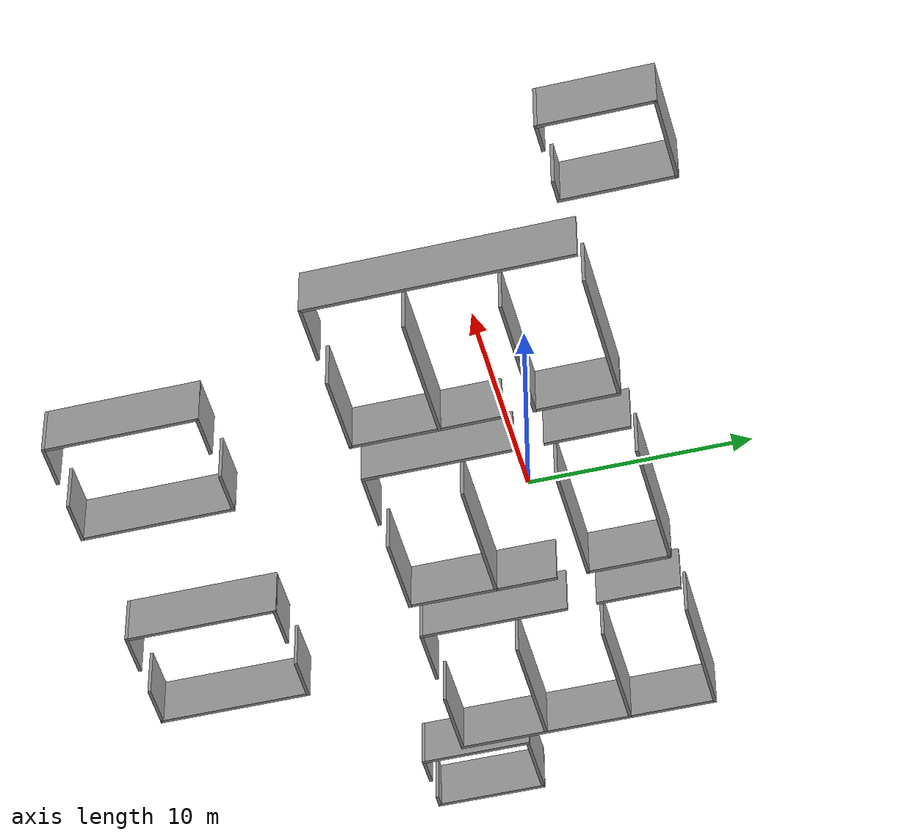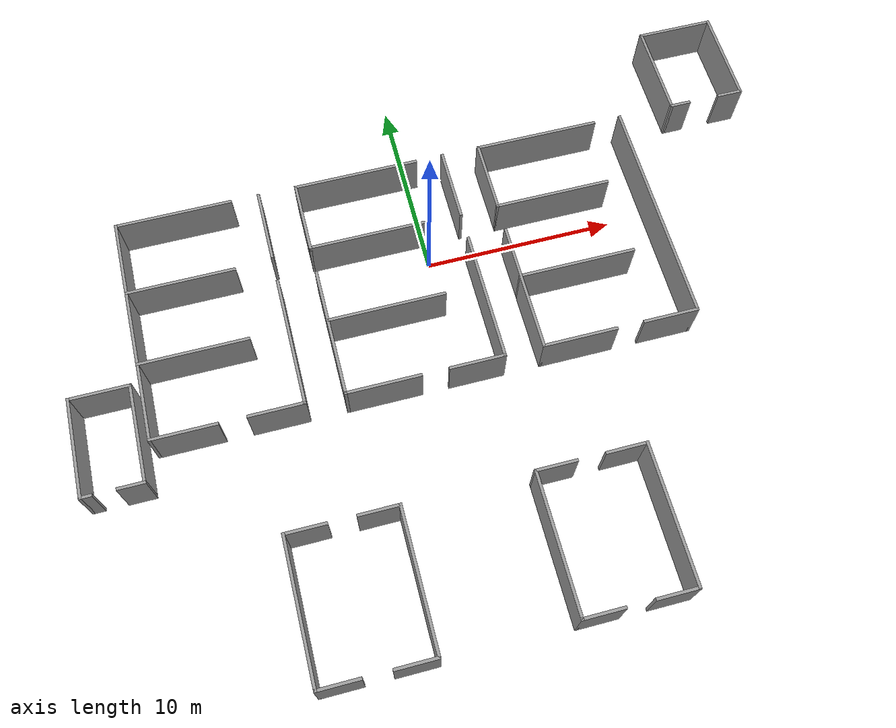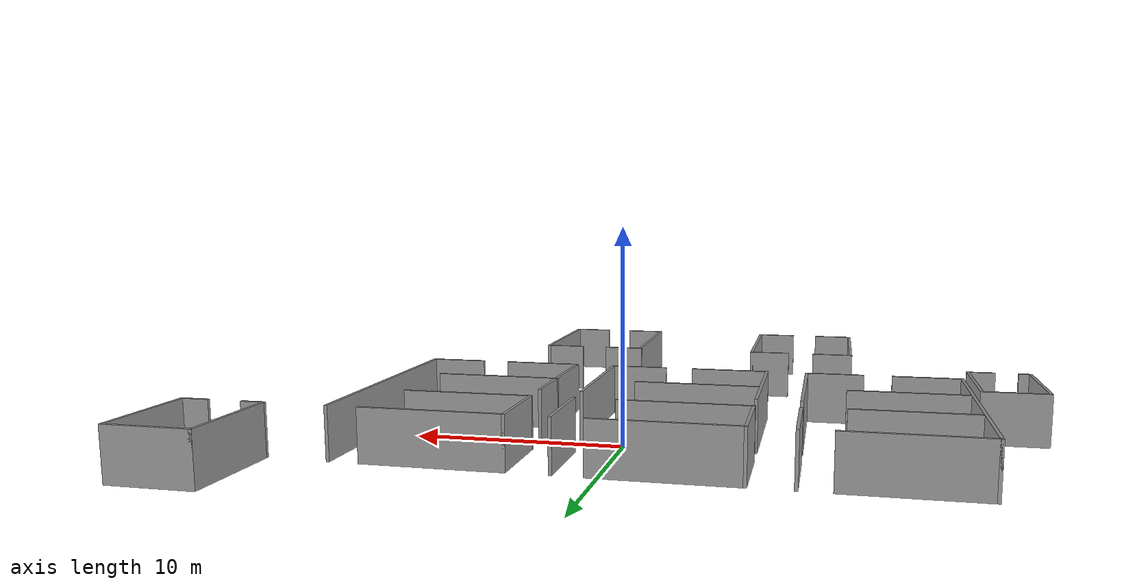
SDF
<?xml version='1.0'?>
<sdf version='1.6'>
  <model name='tents_big'>
    <pose frame=''>0 -5 0 0 -0 0</pose>
    <link name='Wall_10'>
      <collision name='Wall_10_Collision'>
        <geometry>
          <box>
            <size>3.15 0.15 2.5</size>
          </box>
        </geometry>
        <pose frame=''>0 0 1.25 0 -0 0</pose>
      </collision>
      <visual name='Wall_10_Visual'>
        <pose frame=''>0 0 1.25 0 -0 0</pose>
        <geometry>
          <box>
            <size>3.15 0.15 2.5</size>
          </box>
        </geometry>
        <material>
          <script>
            <uri>file://media/materials/scripts/gazebo.material</uri>
            <name>Gazebo/Grey</name>
          </script>
          <ambient>1 1 1 1</ambient>
        </material>
        <meta>
          <layer>0</layer>
        </meta>
      </visual>
      <pose frame=''>-17.5 1 0 0 -0 0</pose>
    </link>
    <link name='Wall_11'>
      <collision name='Wall_11_Collision'>
        <geometry>
          <box>
            <size>5.15 0.15 2.5</size>
          </box>
        </geometry>
        <pose frame=''>0 0 1.25 0 -0 0</pose>
      </collision>
      <visual name='Wall_11_Visual'>
        <pose frame=''>0 0 1.25 0 -0 0</pose>
        <geometry>
          <box>
            <size>5.15 0.15 2.5</size>
          </box>
        </geometry>
        <material>
          <script>
            <uri>file://media/materials/scripts/gazebo.material</uri>
            <name>Gazebo/Grey</name>
          </script>
          <ambient>1 1 1 1</ambient>
        </material>
        <meta>
          <layer>0</layer>
        </meta>
      </visual>
      <pose frame=''>-16 -1.5 0 0 -0 -1.5708</pose>
    </link>
    <link name='Wall_12'>
      <collision name='Wall_12_Collision'>
        <geometry>
          <box>
            <size>1.4 0.15 2.5</size>
          </box>
        </geometry>
        <pose frame=''>0 0 1.25 0 -0 0</pose>
      </collision>
      <visual name='Wall_12_Visual'>
        <pose frame=''>0 0 1.25 0 -0 0</pose>
        <geometry>
          <box>
            <size>1.4 0.15 2.5</size>
          </box>
        </geometry>
        <material>
          <script>
            <uri>file://media/materials/scripts/gazebo.material</uri>
            <name>Gazebo/Grey</name>
          </script>
          <ambient>1 1 1 1</ambient>
        </material>
        <meta>
          <layer>0</layer>
        </meta>
      </visual>
      <pose frame=''>-16.625 -4 0 0 -0 3.14159</pose>
    </link>
    <link name='Wall_14'>
      <collision name='Wall_14_Collision'>
        <geometry>
          <box>
            <size>3.4 0.15 2.5</size>
          </box>
        </geometry>
        <pose frame=''>0 0 1.25 0 -0 0</pose>
      </collision>
      <visual name='Wall_14_Visual'>
        <pose frame=''>0 0 1.25 0 -0 0</pose>
        <geometry>
          <box>
            <size>3.4 0.15 2.5</size>
          </box>
        </geometry>
        <material>
          <script>
            <uri>file://media/materials/scripts/gazebo.material</uri>
            <name>Gazebo/Grey</name>
          </script>
          <ambient>1 1 1 1</ambient>
        </material>
        <meta>
          <layer>0</layer>
        </meta>
      </visual>
      <pose frame=''>-13.875 -2 0 0 -0 3.14159</pose>
    </link>
    <link name='Wall_15'>
      <collision name='Wall_15_Collision'>
        <geometry>
          <box>
            <size>12.15 0.15 2.5</size>
          </box>
        </geometry>
        <pose frame=''>0 0 1.25 0 -0 0</pose>
      </collision>
      <visual name='Wall_15_Visual'>
        <pose frame=''>0 0 1.25 0 -0 0</pose>
        <geometry>
          <box>
            <size>12.15 0.15 2.5</size>
          </box>
        </geometry>
        <material>
          <script>
            <uri>file://media/materials/scripts/gazebo.material</uri>
            <name>Gazebo/Grey</name>
          </script>
          <ambient>1 1 1 1</ambient>
        </material>
        <meta>
          <layer>0</layer>
        </meta>
      </visual>
      <pose frame=''>-15.5 4 0 0 -0 1.5708</pose>
    </link>
    <link name='Wall_16'>
      <collision name='Wall_16_Collision'>
        <geometry>
          <box>
            <size>6.15 0.15 2.5</size>
          </box>
        </geometry>
        <pose frame=''>0 0 1.25 0 -0 0</pose>
      </collision>
      <visual name='Wall_16_Visual'>
        <pose frame=''>0 0 1.25 0 -0 0</pose>
        <geometry>
          <box>
            <size>6.15 0.15 2.5</size>
          </box>
        </geometry>
        <material>
          <script>
            <uri>file://media/materials/scripts/gazebo.material</uri>
            <name>Gazebo/Grey</name>
          </script>
          <ambient>1 1 1 1</ambient>
        </material>
        <meta>
          <layer>0</layer>
        </meta>
      </visual>
      <pose frame=''>-12.5 10 0 0 -0 0</pose>
    </link>
    <link name='Wall_18'>
      <collision name='Wall_18_Collision'>
        <geometry>
          <box>
            <size>3.9 0.15 2.5</size>
          </box>
        </geometry>
        <pose frame=''>0 0 1.25 0 -0 0</pose>
      </collision>
      <visual name='Wall_18_Visual'>
        <pose frame=''>0 0 1.25 0 -0 0</pose>
        <geometry>
          <box>
            <size>3.9 0.15 2.5</size>
          </box>
        </geometry>
        <material>
          <script>
            <uri>file://media/materials/scripts/gazebo.material</uri>
            <name>Gazebo/Grey</name>
          </script>
          <ambient>1 1 1 1</ambient>
        </material>
        <meta>
          <layer>0</layer>
        </meta>
      </visual>
      <pose frame=''>-8 8.125 0 0 -0 -1.5708</pose>
    </link>
    <link name='Wall_20'>
      <collision name='Wall_20_Collision'>
        <geometry>
          <box>
            <size>6.9 0.15 2.5</size>
          </box>
        </geometry>
        <pose frame=''>0 0 1.25 0 -0 0</pose>
      </collision>
      <visual name='Wall_20_Visual'>
        <pose frame=''>0 0 1.25 0 -0 0</pose>
        <geometry>
          <box>
            <size>6.9 0.15 2.5</size>
          </box>
        </geometry>
        <material>
          <script>
            <uri>file://media/materials/scripts/gazebo.material</uri>
            <name>Gazebo/Grey</name>
          </script>
          <ambient>1 1 1 1</ambient>
        </material>
        <meta>
          <layer>0</layer>
        </meta>
      </visual>
      <pose frame=''>-8 1.375 0 0 -0 -1.5708</pose>
    </link>
    <link name='Wall_21'>
      <collision name='Wall_21_Collision'>
        <geometry>
          <box>
            <size>2.9 0.15 2.5</size>
          </box>
        </geometry>
        <pose frame=''>0 0 1.25 0 -0 0</pose>
      </collision>
      <visual name='Wall_21_Visual'>
        <pose frame=''>0 0 1.25 0 -0 0</pose>
        <geometry>
          <box>
            <size>2.9 0.15 2.5</size>
          </box>
        </geometry>
        <material>
          <script>
            <uri>file://media/materials/scripts/gazebo.material</uri>
            <name>Gazebo/Grey</name>
          </script>
          <ambient>1 1 1 1</ambient>
        </material>
        <meta>
          <layer>0</layer>
        </meta>
      </visual>
      <pose frame=''>-9.375 -2 0 0 -0 3.14159</pose>
    </link>
    <link name='Wall_23'>
      <collision name='Wall_23_Collision'>
        <geometry>
          <box>
            <size>5.65 0.15 2.5</size>
          </box>
        </geometry>
        <pose frame=''>0 0 1.25 0 -0 0</pose>
      </collision>
      <visual name='Wall_23_Visual'>
        <pose frame=''>0 0 1.25 0 -0 0</pose>
        <geometry>
          <box>
            <size>5.65 0.15 2.5</size>
          </box>
        </geometry>
        <material>
          <script>
            <uri>file://media/materials/scripts/gazebo.material</uri>
            <name>Gazebo/Grey</name>
          </script>
          <ambient>1 1 1 1</ambient>
        </material>
        <meta>
          <layer>0</layer>
        </meta>
      </visual>
      <pose frame=''>-12.75 6 0 0 -0 0</pose>
    </link>
    <link name='Wall_26'>
      <collision name='Wall_26_Collision'>
        <geometry>
          <box>
            <size>5.65 0.15 2.5</size>
          </box>
        </geometry>
        <pose frame=''>0 0 1.25 0 -0 0</pose>
      </collision>
      <visual name='Wall_26_Visual'>
        <pose frame=''>0 0 1.25 0 -0 0</pose>
        <geometry>
          <box>
            <size>5.65 0.15 2.5</size>
          </box>
        </geometry>
        <material>
          <script>
            <uri>file://media/materials/scripts/gazebo.material</uri>
            <name>Gazebo/Grey</name>
          </script>
          <ambient>1 1 1 1</ambient>
        </material>
        <meta>
          <layer>0</layer>
        </meta>
      </visual>
      <pose frame=''>-12.75 2 0 0 -0 0</pose>
    </link>
    <link name='Wall_28'>
      <collision name='Wall_28_Collision'>
        <geometry>
          <box>
            <size>3.9 0.15 2.5</size>
          </box>
        </geometry>
        <pose frame=''>0 0 1.25 0 -0 0</pose>
      </collision>
      <visual name='Wall_28_Visual'>
        <pose frame=''>0 0 1.25 0 -0 0</pose>
        <geometry>
          <box>
            <size>3.9 0.15 2.5</size>
          </box>
        </geometry>
        <material>
          <script>
            <uri>file://media/materials/scripts/gazebo.material</uri>
            <name>Gazebo/Grey</name>
          </script>
          <ambient>1 1 1 1</ambient>
        </material>
        <meta>
          <layer>0</layer>
        </meta>
      </visual>
      <pose frame=''>-4.125 -2 0 0 -0 3.14159</pose>
    </link>
    <link name='Wall_29'>
      <collision name='Wall_29_Collision'>
        <geometry>
          <box>
            <size>6.9 0.15 2.5</size>
          </box>
        </geometry>
        <pose frame=''>0 0 1.25 0 -0 0</pose>
      </collision>
      <visual name='Wall_29_Visual'>
        <pose frame=''>0 0 1.25 0 -0 0</pose>
        <geometry>
          <box>
            <size>6.9 0.15 2.5</size>
          </box>
        </geometry>
        <material>
          <script>
            <uri>file://media/materials/scripts/gazebo.material</uri>
            <name>Gazebo/Grey</name>
          </script>
          <ambient>1 1 1 1</ambient>
        </material>
        <meta>
          <layer>0</layer>
        </meta>
      </visual>
      <pose frame=''>-6 1.375 0 0 -0 1.5708</pose>
    </link>
    <link name='Wall_31'>
      <collision name='Wall_31_Collision'>
        <geometry>
          <box>
            <size>3.9 0.15 2.5</size>
          </box>
        </geometry>
        <pose frame=''>0 0 1.25 0 -0 0</pose>
      </collision>
      <visual name='Wall_31_Visual'>
        <pose frame=''>0 0 1.25 0 -0 0</pose>
        <geometry>
          <box>
            <size>3.9 0.15 2.5</size>
          </box>
        </geometry>
        <material>
          <script>
            <uri>file://media/materials/scripts/gazebo.material</uri>
            <name>Gazebo/Grey</name>
          </script>
          <ambient>1 1 1 1</ambient>
        </material>
        <meta>
          <layer>0</layer>
        </meta>
      </visual>
      <pose frame=''>-6 8.125 0 0 -0 1.5708</pose>
    </link>
    <link name='Wall_32'>
      <collision name='Wall_32_Collision'>
        <geometry>
          <box>
            <size>6.65 0.15 2.5</size>
          </box>
        </geometry>
        <pose frame=''>0 0 1.25 0 -0 0</pose>
      </collision>
      <visual name='Wall_32_Visual'>
        <pose frame=''>0 0 1.25 0 -0 0</pose>
        <geometry>
          <box>
            <size>6.65 0.15 2.5</size>
          </box>
        </geometry>
        <material>
          <script>
            <uri>file://media/materials/scripts/gazebo.material</uri>
            <name>Gazebo/Grey</name>
          </script>
          <ambient>1 1 1 1</ambient>
        </material>
        <meta>
          <layer>0</layer>
        </meta>
      </visual>
      <pose frame=''>-2.75 10 0 0 -0 0</pose>
    </link>
    <link name='Wall_35'>
      <collision name='Wall_35_Collision'>
        <geometry>
          <box>
            <size>2.9 0.15 2.5</size>
          </box>
        </geometry>
        <pose frame=''>0 0 1.25 0 -0 0</pose>
      </collision>
      <visual name='Wall_35_Visual'>
        <pose frame=''>0 0 1.25 0 -0 0</pose>
        <geometry>
          <box>
            <size>2.9 0.15 2.5</size>
          </box>
        </geometry>
        <material>
          <script>
            <uri>file://media/materials/scripts/gazebo.material</uri>
            <name>Gazebo/Grey</name>
          </script>
          <ambient>1 1 1 1</ambient>
        </material>
        <meta>
          <layer>0</layer>
        </meta>
      </visual>
      <pose frame=''>0.625 -2 0 0 -0 3.14159</pose>
    </link>
    <link name='Wall_37'>
      <collision name='Wall_37_Collision'>
        <geometry>
          <box>
            <size>6.15 0.15 2.5</size>
          </box>
        </geometry>
        <pose frame=''>0 0 1.25 0 -0 0</pose>
      </collision>
      <visual name='Wall_37_Visual'>
        <pose frame=''>0 0 1.25 0 -0 0</pose>
        <geometry>
          <box>
            <size>6.15 0.15 2.5</size>
          </box>
        </geometry>
        <material>
          <script>
            <uri>file://media/materials/scripts/gazebo.material</uri>
            <name>Gazebo/Grey</name>
          </script>
          <ambient>1 1 1 1</ambient>
        </material>
        <meta>
          <layer>0</layer>
        </meta>
      </visual>
      <pose frame=''>-3 6.25 0 0 -0 0</pose>
    </link>
    <link name='Wall_39'>
      <collision name='Wall_39_Collision'>
        <geometry>
          <box>
            <size>6.15 0.15 2.5</size>
          </box>
        </geometry>
        <pose frame=''>0 0 1.25 0 -0 0</pose>
      </collision>
      <visual name='Wall_39_Visual'>
        <pose frame=''>0 0 1.25 0 -0 0</pose>
        <geometry>
          <box>
            <size>6.15 0.15 2.5</size>
          </box>
        </geometry>
        <material>
          <script>
            <uri>file://media/materials/scripts/gazebo.material</uri>
            <name>Gazebo/Grey</name>
          </script>
          <ambient>1 1 1 1</ambient>
        </material>
        <meta>
          <layer>0</layer>
        </meta>
      </visual>
      <pose frame=''>-3 2 0 0 -0 0</pose>
    </link>
    <link name='Wall_41'>
      <collision name='Wall_41_Collision'>
        <geometry>
          <box>
            <size>6.9 0.15 2.5</size>
          </box>
        </geometry>
        <pose frame=''>0 0 1.25 0 -0 0</pose>
      </collision>
      <visual name='Wall_41_Visual'>
        <pose frame=''>0 0 1.25 0 -0 0</pose>
        <geometry>
          <box>
            <size>6.9 0.15 2.5</size>
          </box>
        </geometry>
        <material>
          <script>
            <uri>file://media/materials/scripts/gazebo.material</uri>
            <name>Gazebo/Grey</name>
          </script>
          <ambient>1 1 1 1</ambient>
        </material>
        <meta>
          <layer>0</layer>
        </meta>
      </visual>
      <pose frame=''>2 1.375 0 0 -0 1.5708</pose>
    </link>
    <link name='Wall_43'>
      <collision name='Wall_43_Collision'>
        <geometry>
          <box>
            <size>3.9 0.15 2.5</size>
          </box>
        </geometry>
        <pose frame=''>0 0 1.25 0 -0 0</pose>
      </collision>
      <visual name='Wall_43_Visual'>
        <pose frame=''>0 0 1.25 0 -0 0</pose>
        <geometry>
          <box>
            <size>3.9 0.15 2.5</size>
          </box>
        </geometry>
        <material>
          <script>
            <uri>file://media/materials/scripts/gazebo.material</uri>
            <name>Gazebo/Grey</name>
          </script>
          <ambient>1 1 1 1</ambient>
        </material>
        <meta>
          <layer>0</layer>
        </meta>
      </visual>
      <pose frame=''>2 8.125 0 0 -0 1.5708</pose>
    </link>
    <link name='Wall_45'>
      <collision name='Wall_45_Collision'>
        <geometry>
          <box>
            <size>3.9 0.15 2.5</size>
          </box>
        </geometry>
        <pose frame=''>0 0 1.25 0 -0 0</pose>
      </collision>
      <visual name='Wall_45_Visual'>
        <pose frame=''>0 0 1.25 0 -0 0</pose>
        <geometry>
          <box>
            <size>3.9 0.15 2.5</size>
          </box>
        </geometry>
        <material>
          <script>
            <uri>file://media/materials/scripts/gazebo.material</uri>
            <name>Gazebo/Grey</name>
          </script>
          <ambient>1 1 1 1</ambient>
        </material>
        <meta>
          <layer>0</layer>
        </meta>
      </visual>
      <pose frame=''>4 8.125 0 0 -0 1.5708</pose>
    </link>
    <link name='Wall_46'>
      <collision name='Wall_46_Collision'>
        <geometry>
          <box>
            <size>6.65 0.15 2.5</size>
          </box>
        </geometry>
        <pose frame=''>0 0 1.25 0 -0 0</pose>
      </collision>
      <visual name='Wall_46_Visual'>
        <pose frame=''>0 0 1.25 0 -0 0</pose>
        <geometry>
          <box>
            <size>6.65 0.15 2.5</size>
          </box>
        </geometry>
        <material>
          <script>
            <uri>file://media/materials/scripts/gazebo.material</uri>
            <name>Gazebo/Grey</name>
          </script>
          <ambient>1 1 1 1</ambient>
        </material>
        <meta>
          <layer>0</layer>
        </meta>
      </visual>
      <pose frame=''>7.25 10 0 0 -0 0</pose>
    </link>
    <link name='Wall_48'>
      <collision name='Wall_48_Collision'>
        <geometry>
          <box>
            <size>6.9 0.15 2.5</size>
          </box>
        </geometry>
        <pose frame=''>0 0 1.25 0 -0 0</pose>
      </collision>
      <visual name='Wall_48_Visual'>
        <pose frame=''>0 0 1.25 0 -0 0</pose>
        <geometry>
          <box>
            <size>6.9 0.15 2.5</size>
          </box>
        </geometry>
        <material>
          <script>
            <uri>file://media/materials/scripts/gazebo.material</uri>
            <name>Gazebo/Grey</name>
          </script>
          <ambient>1 1 1 1</ambient>
        </material>
        <meta>
          <layer>0</layer>
        </meta>
      </visual>
      <pose frame=''>4 1.375 0 0 -0 -1.5708</pose>
    </link>
    <link name='Wall_49'>
      <collision name='Wall_49_Collision'>
        <geometry>
          <box>
            <size>3.9 0.15 2.5</size>
          </box>
        </geometry>
        <pose frame=''>0 0 1.25 0 -0 0</pose>
      </collision>
      <visual name='Wall_49_Visual'>
        <pose frame=''>0 0 1.25 0 -0 0</pose>
        <geometry>
          <box>
            <size>3.9 0.15 2.5</size>
          </box>
        </geometry>
        <material>
          <script>
            <uri>file://media/materials/scripts/gazebo.material</uri>
            <name>Gazebo/Grey</name>
          </script>
          <ambient>1 1 1 1</ambient>
        </material>
        <meta>
          <layer>0</layer>
        </meta>
      </visual>
      <pose frame=''>5.875 -2 0 0 -0 0</pose>
    </link>
    <link name='Wall_51'>
      <collision name='Wall_51_Collision'>
        <geometry>
          <box>
            <size>2.9 0.15 2.5</size>
          </box>
        </geometry>
        <pose frame=''>0 0 1.25 0 -0 0</pose>
      </collision>
      <visual name='Wall_51_Visual'>
        <pose frame=''>0 0 1.25 0 -0 0</pose>
        <geometry>
          <box>
            <size>2.9 0.15 2.5</size>
          </box>
        </geometry>
        <material>
          <script>
            <uri>file://media/materials/scripts/gazebo.material</uri>
            <name>Gazebo/Grey</name>
          </script>
          <ambient>1 1 1 1</ambient>
        </material>
        <meta>
          <layer>0</layer>
        </meta>
      </visual>
      <pose frame=''>10.625 -2 0 0 -0 0</pose>
    </link>
    <link name='Wall_52'>
      <collision name='Wall_52_Collision'>
        <geometry>
          <box>
            <size>12.15 0.15 2.5</size>
          </box>
        </geometry>
        <pose frame=''>0 0 1.25 0 -0 0</pose>
      </collision>
      <visual name='Wall_52_Visual'>
        <pose frame=''>0 0 1.25 0 -0 0</pose>
        <geometry>
          <box>
            <size>12.15 0.15 2.5</size>
          </box>
        </geometry>
        <material>
          <script>
            <uri>file://media/materials/scripts/gazebo.material</uri>
            <name>Gazebo/Grey</name>
          </script>
          <ambient>1 1 1 1</ambient>
        </material>
        <meta>
          <layer>0</layer>
        </meta>
      </visual>
      <pose frame=''>12 4 0 0 -0 1.5708</pose>
    </link>
    <link name='Wall_54'>
      <collision name='Wall_54_Collision'>
        <geometry>
          <box>
            <size>6.15 0.15 2.5</size>
          </box>
        </geometry>
        <pose frame=''>0 0 1.25 0 -0 0</pose>
      </collision>
      <visual name='Wall_54_Visual'>
        <pose frame=''>0 0 1.25 0 -0 0</pose>
        <geometry>
          <box>
            <size>6.15 0.15 2.5</size>
          </box>
        </geometry>
        <material>
          <script>
            <uri>file://media/materials/scripts/gazebo.material</uri>
            <name>Gazebo/Grey</name>
          </script>
          <ambient>1 1 1 1</ambient>
        </material>
        <meta>
          <layer>0</layer>
        </meta>
      </visual>
      <pose frame=''>7 2 0 0 -0 0</pose>
    </link>
    <link name='Wall_56'>
      <collision name='Wall_56_Collision'>
        <geometry>
          <box>
            <size>6.15 0.15 2.5</size>
          </box>
        </geometry>
        <pose frame=''>0 0 1.25 0 -0 0</pose>
      </collision>
      <visual name='Wall_56_Visual'>
        <pose frame=''>0 0 1.25 0 -0 0</pose>
        <geometry>
          <box>
            <size>6.15 0.15 2.5</size>
          </box>
        </geometry>
        <material>
          <script>
            <uri>file://media/materials/scripts/gazebo.material</uri>
            <name>Gazebo/Grey</name>
          </script>
          <ambient>1 1 1 1</ambient>
        </material>
        <meta>
          <layer>0</layer>
        </meta>
      </visual>
      <pose frame=''>7 6.25 0 0 -0 0</pose>
    </link>
    <link name='Wall_60'>
      <collision name='Wall_60_Collision'>
        <geometry>
          <box>
            <size>1.15 0.15 2.5</size>
          </box>
        </geometry>
        <pose frame=''>0 0 1.25 0 -0 0</pose>
      </collision>
      <visual name='Wall_60_Visual'>
        <pose frame=''>0 0 1.25 0 -0 0</pose>
        <geometry>
          <box>
            <size>1.15 0.15 2.5</size>
          </box>
        </geometry>
        <material>
          <script>
            <uri>file://media/materials/scripts/gazebo.material</uri>
            <name>Gazebo/Grey</name>
          </script>
          <ambient>1 1 1 1</ambient>
        </material>
        <meta>
          <layer>0</layer>
        </meta>
      </visual>
      <pose frame=''>15.5 10 0 0 -0 3.14159</pose>
    </link>
    <link name='Wall_61'>
      <collision name='Wall_61_Collision'>
        <geometry>
          <box>
            <size>5.15 0.15 2.5</size>
          </box>
        </geometry>
        <pose frame=''>0 0 1.25 0 -0 0</pose>
      </collision>
      <visual name='Wall_61_Visual'>
        <pose frame=''>0 0 1.25 0 -0 0</pose>
        <geometry>
          <box>
            <size>5.15 0.15 2.5</size>
          </box>
        </geometry>
        <material>
          <script>
            <uri>file://media/materials/scripts/gazebo.material</uri>
            <name>Gazebo/Grey</name>
          </script>
          <ambient>1 1 1 1</ambient>
        </material>
        <meta>
          <layer>0</layer>
        </meta>
      </visual>
      <pose frame=''>15 12.5 0 0 -0 1.5708</pose>
    </link>
    <link name='Wall_62'>
      <collision name='Wall_62_Collision'>
        <geometry>
          <box>
            <size>4.15 0.15 2.5</size>
          </box>
        </geometry>
        <pose frame=''>0 0 1.25 0 -0 0</pose>
      </collision>
      <visual name='Wall_62_Visual'>
        <pose frame=''>0 0 1.25 0 -0 0</pose>
        <geometry>
          <box>
            <size>4.15 0.15 2.5</size>
          </box>
        </geometry>
        <material>
          <script>
            <uri>file://media/materials/scripts/gazebo.material</uri>
            <name>Gazebo/Grey</name>
          </script>
          <ambient>1 1 1 1</ambient>
        </material>
        <meta>
          <layer>0</layer>
        </meta>
      </visual>
      <pose frame=''>17 15 0 0 -0 0</pose>
    </link>
    <link name='Wall_63'>
      <collision name='Wall_63_Collision'>
        <geometry>
          <box>
            <size>5.14984 0.15 2.5</size>
          </box>
        </geometry>
        <pose frame=''>0 0 1.25 0 -0 0</pose>
      </collision>
      <visual name='Wall_63_Visual'>
        <pose frame=''>0 0 1.25 0 -0 0</pose>
        <geometry>
          <box>
            <size>5.14984 0.15 2.5</size>
          </box>
        </geometry>
        <material>
          <script>
            <uri>file://media/materials/scripts/gazebo.material</uri>
            <name>Gazebo/Grey</name>
          </script>
          <ambient>1 1 1 1</ambient>
        </material>
        <meta>
          <layer>0</layer>
        </meta>
      </visual>
      <pose frame=''>19 12.5 0 0 -0 -1.5708</pose>
    </link>
    <link name='Wall_64'>
      <collision name='Wall_64_Collision'>
        <geometry>
          <box>
            <size>1.4 0.15 2.5</size>
          </box>
        </geometry>
        <pose frame=''>0 0 1.25 0 -0 0</pose>
      </collision>
      <visual name='Wall_64_Visual'>
        <pose frame=''>0 0 1.25 0 -0 0</pose>
        <geometry>
          <box>
            <size>1.4 0.15 2.5</size>
          </box>
        </geometry>
        <material>
          <script>
            <uri>file://media/materials/scripts/gazebo.material</uri>
            <name>Gazebo/Grey</name>
          </script>
          <ambient>1 1 1 1</ambient>
        </material>
        <meta>
          <layer>0</layer>
        </meta>
      </visual>
      <pose frame=''>18.375 10 0 0 -0 3.14159</pose>
    </link>
    <link name='Wall_69'>
      <collision name='Wall_69_Collision'>
        <geometry>
          <box>
            <size>2.15 0.15 2.5</size>
          </box>
        </geometry>
        <pose frame=''>0 0 1.25 0 -0 0</pose>
      </collision>
      <visual name='Wall_69_Visual'>
        <pose frame=''>0 0 1.25 0 -0 0</pose>
        <geometry>
          <box>
            <size>2.15 0.15 2.5</size>
          </box>
        </geometry>
        <material>
          <script>
            <uri>file://media/materials/scripts/gazebo.material</uri>
            <name>Gazebo/Grey</name>
          </script>
          <ambient>1 1 1 1</ambient>
        </material>
        <meta>
          <layer>0</layer>
        </meta>
      </visual>
      <pose frame=''>-9.25 -8 0 0 -0 3.14159</pose>
    </link>
    <link name='Wall_70'>
      <collision name='Wall_70_Collision'>
        <geometry>
          <box>
            <size>7.15 0.15 2.5</size>
          </box>
        </geometry>
        <pose frame=''>0 0 1.25 0 -0 0</pose>
      </collision>
      <visual name='Wall_70_Visual'>
        <pose frame=''>0 0 1.25 0 -0 0</pose>
        <geometry>
          <box>
            <size>7.15 0.15 2.5</size>
          </box>
        </geometry>
        <material>
          <script>
            <uri>file://media/materials/scripts/gazebo.material</uri>
            <name>Gazebo/Grey</name>
          </script>
          <ambient>1 1 1 1</ambient>
        </material>
        <meta>
          <layer>0</layer>
        </meta>
      </visual>
      <pose frame=''>-10.25 -11.5 0 0 -0 -1.5708</pose>
    </link>
    <link name='Wall_71'>
      <collision name='Wall_71_Collision'>
        <geometry>
          <box>
            <size>2.15 0.15 2.5</size>
          </box>
        </geometry>
        <pose frame=''>0 0 1.25 0 -0 0</pose>
      </collision>
      <visual name='Wall_71_Visual'>
        <pose frame=''>0 0 1.25 0 -0 0</pose>
        <geometry>
          <box>
            <size>2.15 0.15 2.5</size>
          </box>
        </geometry>
        <material>
          <script>
            <uri>file://media/materials/scripts/gazebo.material</uri>
            <name>Gazebo/Grey</name>
          </script>
          <ambient>1 1 1 1</ambient>
        </material>
        <meta>
          <layer>0</layer>
        </meta>
      </visual>
      <pose frame=''>-9.25 -15 0 0 -0 0</pose>
    </link>
    <link name='Wall_73'>
      <collision name='Wall_73_Collision'>
        <geometry>
          <box>
            <size>2.15 0.15 2.5</size>
          </box>
        </geometry>
        <pose frame=''>0 0 1.25 0 -0 0</pose>
      </collision>
      <visual name='Wall_73_Visual'>
        <pose frame=''>0 0 1.25 0 -0 0</pose>
        <geometry>
          <box>
            <size>2.15 0.15 2.5</size>
          </box>
        </geometry>
        <material>
          <script>
            <uri>file://media/materials/scripts/gazebo.material</uri>
            <name>Gazebo/Grey</name>
          </script>
          <ambient>1 1 1 1</ambient>
        </material>
        <meta>
          <layer>0</layer>
        </meta>
      </visual>
      <pose frame=''>-5.75 -8 0 0 -0 0</pose>
    </link>
    <link name='Wall_74'>
      <collision name='Wall_74_Collision'>
        <geometry>
          <box>
            <size>7.15 0.15 2.5</size>
          </box>
        </geometry>
        <pose frame=''>0 0 1.25 0 -0 0</pose>
      </collision>
      <visual name='Wall_74_Visual'>
        <pose frame=''>0 0 1.25 0 -0 0</pose>
        <geometry>
          <box>
            <size>7.15 0.15 2.5</size>
          </box>
        </geometry>
        <material>
          <script>
            <uri>file://media/materials/scripts/gazebo.material</uri>
            <name>Gazebo/Grey</name>
          </script>
          <ambient>1 1 1 1</ambient>
        </material>
        <meta>
          <layer>0</layer>
        </meta>
      </visual>
      <pose frame=''>-4.75 -11.5 0 0 -0 -1.5708</pose>
    </link>
    <link name='Wall_75'>
      <collision name='Wall_75_Collision'>
        <geometry>
          <box>
            <size>2.15 0.15 2.5</size>
          </box>
        </geometry>
        <pose frame=''>0 0 1.25 0 -0 0</pose>
      </collision>
      <visual name='Wall_75_Visual'>
        <pose frame=''>0 0 1.25 0 -0 0</pose>
        <geometry>
          <box>
            <size>2.15 0.15 2.5</size>
          </box>
        </geometry>
        <material>
          <script>
            <uri>file://media/materials/scripts/gazebo.material</uri>
            <name>Gazebo/Grey</name>
          </script>
          <ambient>1 1 1 1</ambient>
        </material>
        <meta>
          <layer>0</layer>
        </meta>
      </visual>
      <pose frame=''>-5.75 -15 0 0 -0 3.14159</pose>
    </link>
    <link name='Wall_78'>
      <collision name='Wall_78_Collision'>
        <geometry>
          <box>
            <size>2.15 0.15 2.5</size>
          </box>
        </geometry>
        <pose frame=''>0 0 1.25 0 -0 0</pose>
      </collision>
      <visual name='Wall_78_Visual'>
        <pose frame=''>0 0 1.25 0 -0 0</pose>
        <geometry>
          <box>
            <size>2.15 0.15 2.5</size>
          </box>
        </geometry>
        <material>
          <script>
            <uri>file://media/materials/scripts/gazebo.material</uri>
            <name>Gazebo/Grey</name>
          </script>
          <ambient>1 1 1 1</ambient>
        </material>
        <meta>
          <layer>0</layer>
        </meta>
      </visual>
      <pose frame=''>2.75 -8 0 0 -0 3.14159</pose>
    </link>
    <link name='Wall_79'>
      <collision name='Wall_79_Collision'>
        <geometry>
          <box>
            <size>7.15 0.15 2.5</size>
          </box>
        </geometry>
        <pose frame=''>0 0 1.25 0 -0 0</pose>
      </collision>
      <visual name='Wall_79_Visual'>
        <pose frame=''>0 0 1.25 0 -0 0</pose>
        <geometry>
          <box>
            <size>7.15 0.15 2.5</size>
          </box>
        </geometry>
        <material>
          <script>
            <uri>file://media/materials/scripts/gazebo.material</uri>
            <name>Gazebo/Grey</name>
          </script>
          <ambient>1 1 1 1</ambient>
        </material>
        <meta>
          <layer>0</layer>
        </meta>
      </visual>
      <pose frame=''>1.75 -11.5 0 0 -0 -1.5708</pose>
    </link>
    <link name='Wall_8'>
      <collision name='Wall_8_Collision'>
        <geometry>
          <box>
            <size>0.65 0.15 2.5</size>
          </box>
        </geometry>
        <pose frame=''>0 0 1.25 0 -0 0</pose>
      </collision>
      <visual name='Wall_8_Visual'>
        <pose frame=''>0 0 1.25 0 -0 0</pose>
        <geometry>
          <box>
            <size>0.65 0.15 2.5</size>
          </box>
        </geometry>
        <material>
          <script>
            <uri>file://media/materials/scripts/gazebo.material</uri>
            <name>Gazebo/Grey</name>
          </script>
          <ambient>1 1 1 1</ambient>
        </material>
        <meta>
          <layer>0</layer>
        </meta>
      </visual>
      <pose frame=''>-18.75 -4 0 0 -0 3.14159</pose>
    </link>
    <link name='Wall_80'>
      <collision name='Wall_80_Collision'>
        <geometry>
          <box>
            <size>2.15 0.15 2.5</size>
          </box>
        </geometry>
        <pose frame=''>0 0 1.25 0 -0 0</pose>
      </collision>
      <visual name='Wall_80_Visual'>
        <pose frame=''>0 0 1.25 0 -0 0</pose>
        <geometry>
          <box>
            <size>2.15 0.15 2.5</size>
          </box>
        </geometry>
        <material>
          <script>
            <uri>file://media/materials/scripts/gazebo.material</uri>
            <name>Gazebo/Grey</name>
          </script>
          <ambient>1 1 1 1</ambient>
        </material>
        <meta>
          <layer>0</layer>
        </meta>
      </visual>
      <pose frame=''>2.75 -15 0 0 -0 0</pose>
    </link>
    <link name='Wall_82'>
      <collision name='Wall_82_Collision'>
        <geometry>
          <box>
            <size>2.15 0.15 2.5</size>
          </box>
        </geometry>
        <pose frame=''>0 0 1.25 0 -0 0</pose>
      </collision>
      <visual name='Wall_82_Visual'>
        <pose frame=''>0 0 1.25 0 -0 0</pose>
        <geometry>
          <box>
            <size>2.15 0.15 2.5</size>
          </box>
        </geometry>
        <material>
          <script>
            <uri>file://media/materials/scripts/gazebo.material</uri>
            <name>Gazebo/Grey</name>
          </script>
          <ambient>1 1 1 1</ambient>
        </material>
        <meta>
          <layer>0</layer>
        </meta>
      </visual>
      <pose frame=''>6.25 -8 0 0 -0 0</pose>
    </link>
    <link name='Wall_83'>
      <collision name='Wall_83_Collision'>
        <geometry>
          <box>
            <size>7.15 0.15 2.5</size>
          </box>
        </geometry>
        <pose frame=''>0 0 1.25 0 -0 0</pose>
      </collision>
      <visual name='Wall_83_Visual'>
        <pose frame=''>0 0 1.25 0 -0 0</pose>
        <geometry>
          <box>
            <size>7.15 0.15 2.5</size>
          </box>
        </geometry>
        <material>
          <script>
            <uri>file://media/materials/scripts/gazebo.material</uri>
            <name>Gazebo/Grey</name>
          </script>
          <ambient>1 1 1 1</ambient>
        </material>
        <meta>
          <layer>0</layer>
        </meta>
      </visual>
      <pose frame=''>7.25 -11.5 0 0 -0 -1.5708</pose>
    </link>
    <link name='Wall_84'>
      <collision name='Wall_84_Collision'>
        <geometry>
          <box>
            <size>2.15 0.15 2.5</size>
          </box>
        </geometry>
        <pose frame=''>0 0 1.25 0 -0 0</pose>
      </collision>
      <visual name='Wall_84_Visual'>
        <pose frame=''>0 0 1.25 0 -0 0</pose>
        <geometry>
          <box>
            <size>2.15 0.15 2.5</size>
          </box>
        </geometry>
        <material>
          <script>
            <uri>file://media/materials/scripts/gazebo.material</uri>
            <name>Gazebo/Grey</name>
          </script>
          <ambient>1 1 1 1</ambient>
        </material>
        <meta>
          <layer>0</layer>
        </meta>
      </visual>
      <pose frame=''>6.25 -15 0 0 -0 3.14159</pose>
    </link>
    <link name='Wall_9'>
      <collision name='Wall_9_Collision'>
        <geometry>
          <box>
            <size>5.15 0.15 2.5</size>
          </box>
        </geometry>
        <pose frame=''>0 0 1.25 0 -0 0</pose>
      </collision>
      <visual name='Wall_9_Visual'>
        <pose frame=''>0 0 1.25 0 -0 0</pose>
        <geometry>
          <box>
            <size>5.15 0.15 2.5</size>
          </box>
        </geometry>
        <material>
          <script>
            <uri>file://media/materials/scripts/gazebo.material</uri>
            <name>Gazebo/Grey</name>
          </script>
          <ambient>1 1 1 1</ambient>
        </material>
        <meta>
          <layer>0</layer>
        </meta>
      </visual>
      <pose frame=''>-19 -1.5 0 0 -0 1.5708</pose>
    </link>
    <static>1</static>
  </model>
</sdf>
